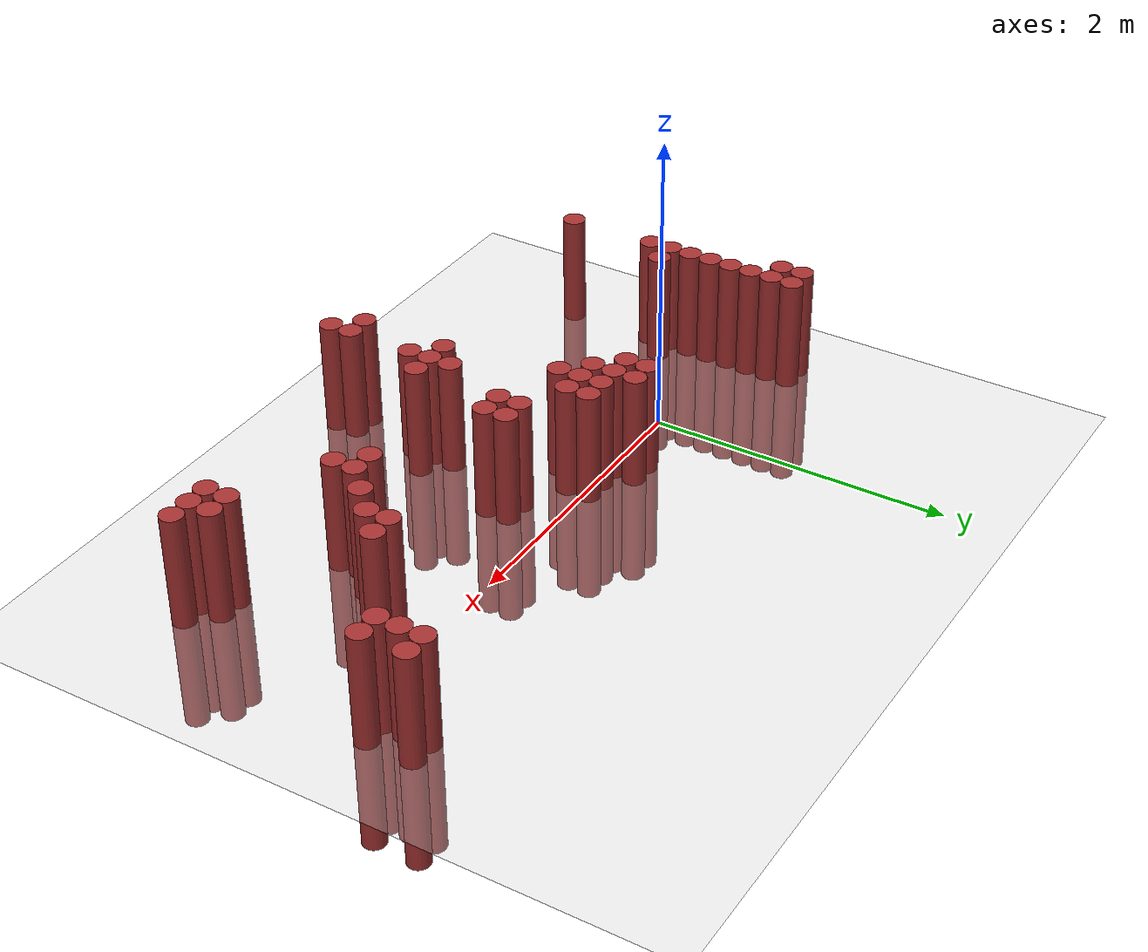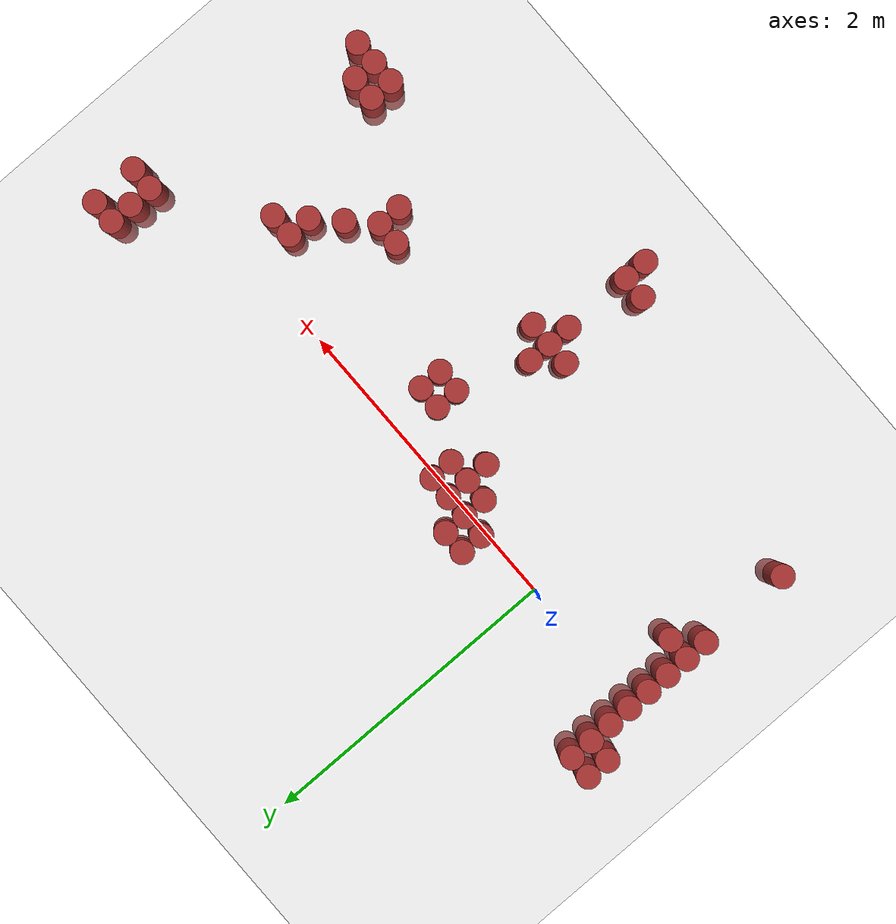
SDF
<sdf version="1.6">
 <world name="default">
  <model name="ground_plane">
   <static>1</static>
   <link name="link">
    <collision name="collision">
     <geometry><plane><normal>0 0 1</normal><size>100 100</size></plane></geometry>
     <surface><friction><ode><mu>100</mu><mu2>50</mu2></ode></friction></surface>
    </collision>
    <visual name="visual">
     <cast_shadows>0</cast_shadows>
     <geometry><plane><normal>0 0 1</normal><size>100 100</size></plane></geometry>
     <material>
      <script><uri>file://media/materials/scripts/gazebo.material</uri><name>Gazebo/Grey</name></script>
     </material>
    </visual>
   </link>
  </model>
  <model name="unit_cylinder_336">
   <static>1</static>
   <pose>-1.025000 0.325000 0.000000 0.000000 0.000000 0.000000</pose>
   <link name="link">
    <inertial>
     <mass>1</mass>
     <inertia><ixx>0.145833</ixx><ixy>0</ixy><ixz>0</ixz><iyy>0.145833</iyy><iyz>0</iyz><izz>0.125</izz></inertia>
    </inertial>
    <collision name="collision">
     <geometry><cylinder><radius>0.075000</radius><length>1.5</length></cylinder></geometry>
    </collision>
    <visual name="visual">
     <geometry><cylinder><radius>0.075000</radius><length>1.5</length></cylinder></geometry>
     <material>
      <ambient>0.648000 0.192000 0.192000 1</ambient>
      <diffuse>0.648000 0.192000 0.192000 1</diffuse>
     </material>
     <material>
      <script><name>Gazebo/Grey</name><uri>file://media/materials/scripts/gazebo.material</uri></script>
     </material>
    </visual>
   </link>
  </model>
  <model name="unit_cylinder_337">
   <static>1</static>
   <pose>-1.025000 0.475000 0.000000 0.000000 0.000000 0.000000</pose>
   <link name="link">
    <inertial>
     <mass>1</mass>
     <inertia><ixx>0.145833</ixx><ixy>0</ixy><ixz>0</ixz><iyy>0.145833</iyy><iyz>0</iyz><izz>0.125</izz></inertia>
    </inertial>
    <collision name="collision">
     <geometry><cylinder><radius>0.075000</radius><length>1.5</length></cylinder></geometry>
    </collision>
    <visual name="visual">
     <geometry><cylinder><radius>0.075000</radius><length>1.5</length></cylinder></geometry>
     <material>
      <ambient>0.648000 0.192000 0.192000 1</ambient>
      <diffuse>0.648000 0.192000 0.192000 1</diffuse>
     </material>
     <material>
      <script><name>Gazebo/Grey</name><uri>file://media/materials/scripts/gazebo.material</uri></script>
     </material>
    </visual>
   </link>
  </model>
  <model name="unit_cylinder_342">
   <static>1</static>
   <pose>-0.875000 -1.175000 0.000000 0.000000 0.000000 0.000000</pose>
   <link name="link">
    <inertial>
     <mass>1</mass>
     <inertia><ixx>0.145833</ixx><ixy>0</ixy><ixz>0</ixz><iyy>0.145833</iyy><iyz>0</iyz><izz>0.125</izz></inertia>
    </inertial>
    <collision name="collision">
     <geometry><cylinder><radius>0.075000</radius><length>1.5</length></cylinder></geometry>
    </collision>
    <visual name="visual">
     <geometry><cylinder><radius>0.075000</radius><length>1.5</length></cylinder></geometry>
     <material>
      <ambient>0.648000 0.192000 0.192000 1</ambient>
      <diffuse>0.648000 0.192000 0.192000 1</diffuse>
     </material>
     <material>
      <script><name>Gazebo/Grey</name><uri>file://media/materials/scripts/gazebo.material</uri></script>
     </material>
    </visual>
   </link>
  </model>
  <model name="unit_cylinder_343">
   <static>1</static>
   <pose>-0.875000 -0.575000 0.000000 0.000000 0.000000 0.000000</pose>
   <link name="link">
    <inertial>
     <mass>1</mass>
     <inertia><ixx>0.145833</ixx><ixy>0</ixy><ixz>0</ixz><iyy>0.145833</iyy><iyz>0</iyz><izz>0.125</izz></inertia>
    </inertial>
    <collision name="collision">
     <geometry><cylinder><radius>0.075000</radius><length>1.5</length></cylinder></geometry>
    </collision>
    <visual name="visual">
     <geometry><cylinder><radius>0.075000</radius><length>1.5</length></cylinder></geometry>
     <material>
      <ambient>0.648000 0.192000 0.192000 1</ambient>
      <diffuse>0.648000 0.192000 0.192000 1</diffuse>
     </material>
     <material>
      <script><name>Gazebo/Grey</name><uri>file://media/materials/scripts/gazebo.material</uri></script>
     </material>
    </visual>
   </link>
  </model>
  <model name="unit_cylinder_344">
   <static>1</static>
   <pose>-0.875000 -0.425000 0.000000 0.000000 0.000000 0.000000</pose>
   <link name="link">
    <inertial>
     <mass>1</mass>
     <inertia><ixx>0.145833</ixx><ixy>0</ixy><ixz>0</ixz><iyy>0.145833</iyy><iyz>0</iyz><izz>0.125</izz></inertia>
    </inertial>
    <collision name="collision">
     <geometry><cylinder><radius>0.075000</radius><length>1.5</length></cylinder></geometry>
    </collision>
    <visual name="visual">
     <geometry><cylinder><radius>0.075000</radius><length>1.5</length></cylinder></geometry>
     <material>
      <ambient>0.648000 0.192000 0.192000 1</ambient>
      <diffuse>0.648000 0.192000 0.192000 1</diffuse>
     </material>
     <material>
      <script><name>Gazebo/Grey</name><uri>file://media/materials/scripts/gazebo.material</uri></script>
     </material>
    </visual>
   </link>
  </model>
  <model name="unit_cylinder_345">
   <static>1</static>
   <pose>-0.875000 -0.275000 0.000000 0.000000 0.000000 0.000000</pose>
   <link name="link">
    <inertial>
     <mass>1</mass>
     <inertia><ixx>0.145833</ixx><ixy>0</ixy><ixz>0</ixz><iyy>0.145833</iyy><iyz>0</iyz><izz>0.125</izz></inertia>
    </inertial>
    <collision name="collision">
     <geometry><cylinder><radius>0.075000</radius><length>1.5</length></cylinder></geometry>
    </collision>
    <visual name="visual">
     <geometry><cylinder><radius>0.075000</radius><length>1.5</length></cylinder></geometry>
     <material>
      <ambient>0.648000 0.192000 0.192000 1</ambient>
      <diffuse>0.648000 0.192000 0.192000 1</diffuse>
     </material>
     <material>
      <script><name>Gazebo/Grey</name><uri>file://media/materials/scripts/gazebo.material</uri></script>
     </material>
    </visual>
   </link>
  </model>
  <model name="unit_cylinder_346">
   <static>1</static>
   <pose>-0.875000 -0.125000 0.000000 0.000000 0.000000 0.000000</pose>
   <link name="link">
    <inertial>
     <mass>1</mass>
     <inertia><ixx>0.145833</ixx><ixy>0</ixy><ixz>0</ixz><iyy>0.145833</iyy><iyz>0</iyz><izz>0.125</izz></inertia>
    </inertial>
    <collision name="collision">
     <geometry><cylinder><radius>0.075000</radius><length>1.5</length></cylinder></geometry>
    </collision>
    <visual name="visual">
     <geometry><cylinder><radius>0.075000</radius><length>1.5</length></cylinder></geometry>
     <material>
      <ambient>0.648000 0.192000 0.192000 1</ambient>
      <diffuse>0.648000 0.192000 0.192000 1</diffuse>
     </material>
     <material>
      <script><name>Gazebo/Grey</name><uri>file://media/materials/scripts/gazebo.material</uri></script>
     </material>
    </visual>
   </link>
  </model>
  <model name="unit_cylinder_347">
   <static>1</static>
   <pose>-0.875000 0.025000 0.000000 0.000000 0.000000 0.000000</pose>
   <link name="link">
    <inertial>
     <mass>1</mass>
     <inertia><ixx>0.145833</ixx><ixy>0</ixy><ixz>0</ixz><iyy>0.145833</iyy><iyz>0</iyz><izz>0.125</izz></inertia>
    </inertial>
    <collision name="collision">
     <geometry><cylinder><radius>0.075000</radius><length>1.5</length></cylinder></geometry>
    </collision>
    <visual name="visual">
     <geometry><cylinder><radius>0.075000</radius><length>1.5</length></cylinder></geometry>
     <material>
      <ambient>0.648000 0.192000 0.192000 1</ambient>
      <diffuse>0.648000 0.192000 0.192000 1</diffuse>
     </material>
     <material>
      <script><name>Gazebo/Grey</name><uri>file://media/materials/scripts/gazebo.material</uri></script>
     </material>
    </visual>
   </link>
  </model>
  <model name="unit_cylinder_348">
   <static>1</static>
   <pose>-0.875000 0.175000 0.000000 0.000000 0.000000 0.000000</pose>
   <link name="link">
    <inertial>
     <mass>1</mass>
     <inertia><ixx>0.145833</ixx><ixy>0</ixy><ixz>0</ixz><iyy>0.145833</iyy><iyz>0</iyz><izz>0.125</izz></inertia>
    </inertial>
    <collision name="collision">
     <geometry><cylinder><radius>0.075000</radius><length>1.5</length></cylinder></geometry>
    </collision>
    <visual name="visual">
     <geometry><cylinder><radius>0.075000</radius><length>1.5</length></cylinder></geometry>
     <material>
      <ambient>0.648000 0.192000 0.192000 1</ambient>
      <diffuse>0.648000 0.192000 0.192000 1</diffuse>
     </material>
     <material>
      <script><name>Gazebo/Grey</name><uri>file://media/materials/scripts/gazebo.material</uri></script>
     </material>
    </visual>
   </link>
  </model>
  <model name="unit_cylinder_349">
   <static>1</static>
   <pose>-0.875000 0.325000 0.000000 0.000000 0.000000 0.000000</pose>
   <link name="link">
    <inertial>
     <mass>1</mass>
     <inertia><ixx>0.145833</ixx><ixy>0</ixy><ixz>0</ixz><iyy>0.145833</iyy><iyz>0</iyz><izz>0.125</izz></inertia>
    </inertial>
    <collision name="collision">
     <geometry><cylinder><radius>0.075000</radius><length>1.5</length></cylinder></geometry>
    </collision>
    <visual name="visual">
     <geometry><cylinder><radius>0.075000</radius><length>1.5</length></cylinder></geometry>
     <material>
      <ambient>0.648000 0.192000 0.192000 1</ambient>
      <diffuse>0.648000 0.192000 0.192000 1</diffuse>
     </material>
     <material>
      <script><name>Gazebo/Grey</name><uri>file://media/materials/scripts/gazebo.material</uri></script>
     </material>
    </visual>
   </link>
  </model>
  <model name="unit_cylinder_350">
   <static>1</static>
   <pose>-0.875000 0.475000 0.000000 0.000000 0.000000 0.000000</pose>
   <link name="link">
    <inertial>
     <mass>1</mass>
     <inertia><ixx>0.145833</ixx><ixy>0</ixy><ixz>0</ixz><iyy>0.145833</iyy><iyz>0</iyz><izz>0.125</izz></inertia>
    </inertial>
    <collision name="collision">
     <geometry><cylinder><radius>0.075000</radius><length>1.5</length></cylinder></geometry>
    </collision>
    <visual name="visual">
     <geometry><cylinder><radius>0.075000</radius><length>1.5</length></cylinder></geometry>
     <material>
      <ambient>0.648000 0.192000 0.192000 1</ambient>
      <diffuse>0.648000 0.192000 0.192000 1</diffuse>
     </material>
     <material>
      <script><name>Gazebo/Grey</name><uri>file://media/materials/scripts/gazebo.material</uri></script>
     </material>
    </visual>
   </link>
  </model>
  <model name="unit_cylinder_353">
   <static>1</static>
   <pose>-0.725000 -0.425000 0.000000 0.000000 0.000000 0.000000</pose>
   <link name="link">
    <inertial>
     <mass>1</mass>
     <inertia><ixx>0.145833</ixx><ixy>0</ixy><ixz>0</ixz><iyy>0.145833</iyy><iyz>0</iyz><izz>0.125</izz></inertia>
    </inertial>
    <collision name="collision">
     <geometry><cylinder><radius>0.075000</radius><length>1.5</length></cylinder></geometry>
    </collision>
    <visual name="visual">
     <geometry><cylinder><radius>0.075000</radius><length>1.5</length></cylinder></geometry>
     <material>
      <ambient>0.648000 0.192000 0.192000 1</ambient>
      <diffuse>0.648000 0.192000 0.192000 1</diffuse>
     </material>
     <material>
      <script><name>Gazebo/Grey</name><uri>file://media/materials/scripts/gazebo.material</uri></script>
     </material>
    </visual>
   </link>
  </model>
  <model name="unit_cylinder_371">
   <static>1</static>
   <pose>0.475000 0.025000 0.000000 0.000000 0.000000 0.000000</pose>
   <link name="link">
    <inertial>
     <mass>1</mass>
     <inertia><ixx>0.145833</ixx><ixy>0</ixy><ixz>0</ixz><iyy>0.145833</iyy><iyz>0</iyz><izz>0.125</izz></inertia>
    </inertial>
    <collision name="collision">
     <geometry><cylinder><radius>0.075000</radius><length>1.5</length></cylinder></geometry>
    </collision>
    <visual name="visual">
     <geometry><cylinder><radius>0.075000</radius><length>1.5</length></cylinder></geometry>
     <material>
      <ambient>0.648000 0.192000 0.192000 1</ambient>
      <diffuse>0.648000 0.192000 0.192000 1</diffuse>
     </material>
     <material>
      <script><name>Gazebo/Grey</name><uri>file://media/materials/scripts/gazebo.material</uri></script>
     </material>
    </visual>
   </link>
  </model>
  <model name="unit_cylinder_372">
   <static>1</static>
   <pose>0.475000 0.175000 0.000000 0.000000 0.000000 0.000000</pose>
   <link name="link">
    <inertial>
     <mass>1</mass>
     <inertia><ixx>0.145833</ixx><ixy>0</ixy><ixz>0</ixz><iyy>0.145833</iyy><iyz>0</iyz><izz>0.125</izz></inertia>
    </inertial>
    <collision name="collision">
     <geometry><cylinder><radius>0.075000</radius><length>1.5</length></cylinder></geometry>
    </collision>
    <visual name="visual">
     <geometry><cylinder><radius>0.075000</radius><length>1.5</length></cylinder></geometry>
     <material>
      <ambient>0.648000 0.192000 0.192000 1</ambient>
      <diffuse>0.648000 0.192000 0.192000 1</diffuse>
     </material>
     <material>
      <script><name>Gazebo/Grey</name><uri>file://media/materials/scripts/gazebo.material</uri></script>
     </material>
    </visual>
   </link>
  </model>
  <model name="unit_cylinder_380">
   <static>1</static>
   <pose>0.625000 -0.125000 0.000000 0.000000 0.000000 0.000000</pose>
   <link name="link">
    <inertial>
     <mass>1</mass>
     <inertia><ixx>0.145833</ixx><ixy>0</ixy><ixz>0</ixz><iyy>0.145833</iyy><iyz>0</iyz><izz>0.125</izz></inertia>
    </inertial>
    <collision name="collision">
     <geometry><cylinder><radius>0.075000</radius><length>1.5</length></cylinder></geometry>
    </collision>
    <visual name="visual">
     <geometry><cylinder><radius>0.075000</radius><length>1.5</length></cylinder></geometry>
     <material>
      <ambient>0.648000 0.192000 0.192000 1</ambient>
      <diffuse>0.648000 0.192000 0.192000 1</diffuse>
     </material>
     <material>
      <script><name>Gazebo/Grey</name><uri>file://media/materials/scripts/gazebo.material</uri></script>
     </material>
    </visual>
   </link>
  </model>
  <model name="unit_cylinder_381">
   <static>1</static>
   <pose>0.625000 0.025000 0.000000 0.000000 0.000000 0.000000</pose>
   <link name="link">
    <inertial>
     <mass>1</mass>
     <inertia><ixx>0.145833</ixx><ixy>0</ixy><ixz>0</ixz><iyy>0.145833</iyy><iyz>0</iyz><izz>0.125</izz></inertia>
    </inertial>
    <collision name="collision">
     <geometry><cylinder><radius>0.075000</radius><length>1.5</length></cylinder></geometry>
    </collision>
    <visual name="visual">
     <geometry><cylinder><radius>0.075000</radius><length>1.5</length></cylinder></geometry>
     <material>
      <ambient>0.648000 0.192000 0.192000 1</ambient>
      <diffuse>0.648000 0.192000 0.192000 1</diffuse>
     </material>
     <material>
      <script><name>Gazebo/Grey</name><uri>file://media/materials/scripts/gazebo.material</uri></script>
     </material>
    </visual>
   </link>
  </model>
  <model name="unit_cylinder_382">
   <static>1</static>
   <pose>0.625000 0.175000 0.000000 0.000000 0.000000 0.000000</pose>
   <link name="link">
    <inertial>
     <mass>1</mass>
     <inertia><ixx>0.145833</ixx><ixy>0</ixy><ixz>0</ixz><iyy>0.145833</iyy><iyz>0</iyz><izz>0.125</izz></inertia>
    </inertial>
    <collision name="collision">
     <geometry><cylinder><radius>0.075000</radius><length>1.5</length></cylinder></geometry>
    </collision>
    <visual name="visual">
     <geometry><cylinder><radius>0.075000</radius><length>1.5</length></cylinder></geometry>
     <material>
      <ambient>0.648000 0.192000 0.192000 1</ambient>
      <diffuse>0.648000 0.192000 0.192000 1</diffuse>
     </material>
     <material>
      <script><name>Gazebo/Grey</name><uri>file://media/materials/scripts/gazebo.material</uri></script>
     </material>
    </visual>
   </link>
  </model>
  <model name="unit_cylinder_387">
   <static>1</static>
   <pose>0.775000 -0.275000 0.000000 0.000000 0.000000 0.000000</pose>
   <link name="link">
    <inertial>
     <mass>1</mass>
     <inertia><ixx>0.145833</ixx><ixy>0</ixy><ixz>0</ixz><iyy>0.145833</iyy><iyz>0</iyz><izz>0.125</izz></inertia>
    </inertial>
    <collision name="collision">
     <geometry><cylinder><radius>0.075000</radius><length>1.5</length></cylinder></geometry>
    </collision>
    <visual name="visual">
     <geometry><cylinder><radius>0.075000</radius><length>1.5</length></cylinder></geometry>
     <material>
      <ambient>0.648000 0.192000 0.192000 1</ambient>
      <diffuse>0.648000 0.192000 0.192000 1</diffuse>
     </material>
     <material>
      <script><name>Gazebo/Grey</name><uri>file://media/materials/scripts/gazebo.material</uri></script>
     </material>
    </visual>
   </link>
  </model>
  <model name="unit_cylinder_388">
   <static>1</static>
   <pose>0.775000 -0.125000 0.000000 0.000000 0.000000 0.000000</pose>
   <link name="link">
    <inertial>
     <mass>1</mass>
     <inertia><ixx>0.145833</ixx><ixy>0</ixy><ixz>0</ixz><iyy>0.145833</iyy><iyz>0</iyz><izz>0.125</izz></inertia>
    </inertial>
    <collision name="collision">
     <geometry><cylinder><radius>0.075000</radius><length>1.5</length></cylinder></geometry>
    </collision>
    <visual name="visual">
     <geometry><cylinder><radius>0.075000</radius><length>1.5</length></cylinder></geometry>
     <material>
      <ambient>0.648000 0.192000 0.192000 1</ambient>
      <diffuse>0.648000 0.192000 0.192000 1</diffuse>
     </material>
     <material>
      <script><name>Gazebo/Grey</name><uri>file://media/materials/scripts/gazebo.material</uri></script>
     </material>
    </visual>
   </link>
  </model>
  <model name="unit_cylinder_389">
   <static>1</static>
   <pose>0.775000 0.025000 0.000000 0.000000 0.000000 0.000000</pose>
   <link name="link">
    <inertial>
     <mass>1</mass>
     <inertia><ixx>0.145833</ixx><ixy>0</ixy><ixz>0</ixz><iyy>0.145833</iyy><iyz>0</iyz><izz>0.125</izz></inertia>
    </inertial>
    <collision name="collision">
     <geometry><cylinder><radius>0.075000</radius><length>1.5</length></cylinder></geometry>
    </collision>
    <visual name="visual">
     <geometry><cylinder><radius>0.075000</radius><length>1.5</length></cylinder></geometry>
     <material>
      <ambient>0.648000 0.192000 0.192000 1</ambient>
      <diffuse>0.648000 0.192000 0.192000 1</diffuse>
     </material>
     <material>
      <script><name>Gazebo/Grey</name><uri>file://media/materials/scripts/gazebo.material</uri></script>
     </material>
    </visual>
   </link>
  </model>
  <model name="unit_cylinder_393">
   <static>1</static>
   <pose>0.925000 -1.625000 0.000000 0.000000 0.000000 0.000000</pose>
   <link name="link">
    <inertial>
     <mass>1</mass>
     <inertia><ixx>0.145833</ixx><ixy>0</ixy><ixz>0</ixz><iyy>0.145833</iyy><iyz>0</iyz><izz>0.125</izz></inertia>
    </inertial>
    <collision name="collision">
     <geometry><cylinder><radius>0.075000</radius><length>1.5</length></cylinder></geometry>
    </collision>
    <visual name="visual">
     <geometry><cylinder><radius>0.075000</radius><length>1.5</length></cylinder></geometry>
     <material>
      <ambient>0.648000 0.192000 0.192000 1</ambient>
      <diffuse>0.648000 0.192000 0.192000 1</diffuse>
     </material>
     <material>
      <script><name>Gazebo/Grey</name><uri>file://media/materials/scripts/gazebo.material</uri></script>
     </material>
    </visual>
   </link>
  </model>
  <model name="unit_cylinder_394">
   <static>1</static>
   <pose>0.925000 -1.025000 0.000000 0.000000 0.000000 0.000000</pose>
   <link name="link">
    <inertial>
     <mass>1</mass>
     <inertia><ixx>0.145833</ixx><ixy>0</ixy><ixz>0</ixz><iyy>0.145833</iyy><iyz>0</iyz><izz>0.125</izz></inertia>
    </inertial>
    <collision name="collision">
     <geometry><cylinder><radius>0.075000</radius><length>1.5</length></cylinder></geometry>
    </collision>
    <visual name="visual">
     <geometry><cylinder><radius>0.075000</radius><length>1.5</length></cylinder></geometry>
     <material>
      <ambient>0.648000 0.192000 0.192000 1</ambient>
      <diffuse>0.648000 0.192000 0.192000 1</diffuse>
     </material>
     <material>
      <script><name>Gazebo/Grey</name><uri>file://media/materials/scripts/gazebo.material</uri></script>
     </material>
    </visual>
   </link>
  </model>
  <model name="unit_cylinder_395">
   <static>1</static>
   <pose>0.925000 -0.125000 0.000000 0.000000 0.000000 0.000000</pose>
   <link name="link">
    <inertial>
     <mass>1</mass>
     <inertia><ixx>0.145833</ixx><ixy>0</ixy><ixz>0</ixz><iyy>0.145833</iyy><iyz>0</iyz><izz>0.125</izz></inertia>
    </inertial>
    <collision name="collision">
     <geometry><cylinder><radius>0.075000</radius><length>1.5</length></cylinder></geometry>
    </collision>
    <visual name="visual">
     <geometry><cylinder><radius>0.075000</radius><length>1.5</length></cylinder></geometry>
     <material>
      <ambient>0.648000 0.192000 0.192000 1</ambient>
      <diffuse>0.648000 0.192000 0.192000 1</diffuse>
     </material>
     <material>
      <script><name>Gazebo/Grey</name><uri>file://media/materials/scripts/gazebo.material</uri></script>
     </material>
    </visual>
   </link>
  </model>
  <model name="unit_cylinder_396">
   <static>1</static>
   <pose>0.925000 0.025000 0.000000 0.000000 0.000000 0.000000</pose>
   <link name="link">
    <inertial>
     <mass>1</mass>
     <inertia><ixx>0.145833</ixx><ixy>0</ixy><ixz>0</ixz><iyy>0.145833</iyy><iyz>0</iyz><izz>0.125</izz></inertia>
    </inertial>
    <collision name="collision">
     <geometry><cylinder><radius>0.075000</radius><length>1.5</length></cylinder></geometry>
    </collision>
    <visual name="visual">
     <geometry><cylinder><radius>0.075000</radius><length>1.5</length></cylinder></geometry>
     <material>
      <ambient>0.648000 0.192000 0.192000 1</ambient>
      <diffuse>0.648000 0.192000 0.192000 1</diffuse>
     </material>
     <material>
      <script><name>Gazebo/Grey</name><uri>file://media/materials/scripts/gazebo.material</uri></script>
     </material>
    </visual>
   </link>
  </model>
  <model name="unit_cylinder_403">
   <static>1</static>
   <pose>1.075000 -1.775000 0.000000 0.000000 0.000000 0.000000</pose>
   <link name="link">
    <inertial>
     <mass>1</mass>
     <inertia><ixx>0.145833</ixx><ixy>0</ixy><ixz>0</ixz><iyy>0.145833</iyy><iyz>0</iyz><izz>0.125</izz></inertia>
    </inertial>
    <collision name="collision">
     <geometry><cylinder><radius>0.075000</radius><length>1.5</length></cylinder></geometry>
    </collision>
    <visual name="visual">
     <geometry><cylinder><radius>0.075000</radius><length>1.5</length></cylinder></geometry>
     <material>
      <ambient>0.648000 0.192000 0.192000 1</ambient>
      <diffuse>0.648000 0.192000 0.192000 1</diffuse>
     </material>
     <material>
      <script><name>Gazebo/Grey</name><uri>file://media/materials/scripts/gazebo.material</uri></script>
     </material>
    </visual>
   </link>
  </model>
  <model name="unit_cylinder_404">
   <static>1</static>
   <pose>1.075000 -1.625000 0.000000 0.000000 0.000000 0.000000</pose>
   <link name="link">
    <inertial>
     <mass>1</mass>
     <inertia><ixx>0.145833</ixx><ixy>0</ixy><ixz>0</ixz><iyy>0.145833</iyy><iyz>0</iyz><izz>0.125</izz></inertia>
    </inertial>
    <collision name="collision">
     <geometry><cylinder><radius>0.075000</radius><length>1.5</length></cylinder></geometry>
    </collision>
    <visual name="visual">
     <geometry><cylinder><radius>0.075000</radius><length>1.5</length></cylinder></geometry>
     <material>
      <ambient>0.648000 0.192000 0.192000 1</ambient>
      <diffuse>0.648000 0.192000 0.192000 1</diffuse>
     </material>
     <material>
      <script><name>Gazebo/Grey</name><uri>file://media/materials/scripts/gazebo.material</uri></script>
     </material>
    </visual>
   </link>
  </model>
  <model name="unit_cylinder_405">
   <static>1</static>
   <pose>1.075000 -1.175000 0.000000 0.000000 0.000000 0.000000</pose>
   <link name="link">
    <inertial>
     <mass>1</mass>
     <inertia><ixx>0.145833</ixx><ixy>0</ixy><ixz>0</ixz><iyy>0.145833</iyy><iyz>0</iyz><izz>0.125</izz></inertia>
    </inertial>
    <collision name="collision">
     <geometry><cylinder><radius>0.075000</radius><length>1.5</length></cylinder></geometry>
    </collision>
    <visual name="visual">
     <geometry><cylinder><radius>0.075000</radius><length>1.5</length></cylinder></geometry>
     <material>
      <ambient>0.648000 0.192000 0.192000 1</ambient>
      <diffuse>0.648000 0.192000 0.192000 1</diffuse>
     </material>
     <material>
      <script><name>Gazebo/Grey</name><uri>file://media/materials/scripts/gazebo.material</uri></script>
     </material>
    </visual>
   </link>
  </model>
  <model name="unit_cylinder_406">
   <static>1</static>
   <pose>1.075000 -1.025000 0.000000 0.000000 0.000000 0.000000</pose>
   <link name="link">
    <inertial>
     <mass>1</mass>
     <inertia><ixx>0.145833</ixx><ixy>0</ixy><ixz>0</ixz><iyy>0.145833</iyy><iyz>0</iyz><izz>0.125</izz></inertia>
    </inertial>
    <collision name="collision">
     <geometry><cylinder><radius>0.075000</radius><length>1.5</length></cylinder></geometry>
    </collision>
    <visual name="visual">
     <geometry><cylinder><radius>0.075000</radius><length>1.5</length></cylinder></geometry>
     <material>
      <ambient>0.648000 0.192000 0.192000 1</ambient>
      <diffuse>0.648000 0.192000 0.192000 1</diffuse>
     </material>
     <material>
      <script><name>Gazebo/Grey</name><uri>file://media/materials/scripts/gazebo.material</uri></script>
     </material>
    </visual>
   </link>
  </model>
  <model name="unit_cylinder_407">
   <static>1</static>
   <pose>1.075000 -0.875000 0.000000 0.000000 0.000000 0.000000</pose>
   <link name="link">
    <inertial>
     <mass>1</mass>
     <inertia><ixx>0.145833</ixx><ixy>0</ixy><ixz>0</ixz><iyy>0.145833</iyy><iyz>0</iyz><izz>0.125</izz></inertia>
    </inertial>
    <collision name="collision">
     <geometry><cylinder><radius>0.075000</radius><length>1.5</length></cylinder></geometry>
    </collision>
    <visual name="visual">
     <geometry><cylinder><radius>0.075000</radius><length>1.5</length></cylinder></geometry>
     <material>
      <ambient>0.648000 0.192000 0.192000 1</ambient>
      <diffuse>0.648000 0.192000 0.192000 1</diffuse>
     </material>
     <material>
      <script><name>Gazebo/Grey</name><uri>file://media/materials/scripts/gazebo.material</uri></script>
     </material>
    </visual>
   </link>
  </model>
  <model name="unit_cylinder_416">
   <static>1</static>
   <pose>1.225000 -1.025000 0.000000 0.000000 0.000000 0.000000</pose>
   <link name="link">
    <inertial>
     <mass>1</mass>
     <inertia><ixx>0.145833</ixx><ixy>0</ixy><ixz>0</ixz><iyy>0.145833</iyy><iyz>0</iyz><izz>0.125</izz></inertia>
    </inertial>
    <collision name="collision">
     <geometry><cylinder><radius>0.075000</radius><length>1.5</length></cylinder></geometry>
    </collision>
    <visual name="visual">
     <geometry><cylinder><radius>0.075000</radius><length>1.5</length></cylinder></geometry>
     <material>
      <ambient>0.648000 0.192000 0.192000 1</ambient>
      <diffuse>0.648000 0.192000 0.192000 1</diffuse>
     </material>
     <material>
      <script><name>Gazebo/Grey</name><uri>file://media/materials/scripts/gazebo.material</uri></script>
     </material>
    </visual>
   </link>
  </model>
  <model name="unit_cylinder_417">
   <static>1</static>
   <pose>1.225000 -0.425000 0.000000 0.000000 0.000000 0.000000</pose>
   <link name="link">
    <inertial>
     <mass>1</mass>
     <inertia><ixx>0.145833</ixx><ixy>0</ixy><ixz>0</ixz><iyy>0.145833</iyy><iyz>0</iyz><izz>0.125</izz></inertia>
    </inertial>
    <collision name="collision">
     <geometry><cylinder><radius>0.075000</radius><length>1.5</length></cylinder></geometry>
    </collision>
    <visual name="visual">
     <geometry><cylinder><radius>0.075000</radius><length>1.5</length></cylinder></geometry>
     <material>
      <ambient>0.648000 0.192000 0.192000 1</ambient>
      <diffuse>0.648000 0.192000 0.192000 1</diffuse>
     </material>
     <material>
      <script><name>Gazebo/Grey</name><uri>file://media/materials/scripts/gazebo.material</uri></script>
     </material>
    </visual>
   </link>
  </model>
  <model name="unit_cylinder_418">
   <static>1</static>
   <pose>1.225000 -0.275000 0.000000 0.000000 0.000000 0.000000</pose>
   <link name="link">
    <inertial>
     <mass>1</mass>
     <inertia><ixx>0.145833</ixx><ixy>0</ixy><ixz>0</ixz><iyy>0.145833</iyy><iyz>0</iyz><izz>0.125</izz></inertia>
    </inertial>
    <collision name="collision">
     <geometry><cylinder><radius>0.075000</radius><length>1.5</length></cylinder></geometry>
    </collision>
    <visual name="visual">
     <geometry><cylinder><radius>0.075000</radius><length>1.5</length></cylinder></geometry>
     <material>
      <ambient>0.648000 0.192000 0.192000 1</ambient>
      <diffuse>0.648000 0.192000 0.192000 1</diffuse>
     </material>
     <material>
      <script><name>Gazebo/Grey</name><uri>file://media/materials/scripts/gazebo.material</uri></script>
     </material>
    </visual>
   </link>
  </model>
  <model name="unit_cylinder_428">
   <static>1</static>
   <pose>1.375000 -0.425000 0.000000 0.000000 0.000000 0.000000</pose>
   <link name="link">
    <inertial>
     <mass>1</mass>
     <inertia><ixx>0.145833</ixx><ixy>0</ixy><ixz>0</ixz><iyy>0.145833</iyy><iyz>0</iyz><izz>0.125</izz></inertia>
    </inertial>
    <collision name="collision">
     <geometry><cylinder><radius>0.075000</radius><length>1.5</length></cylinder></geometry>
    </collision>
    <visual name="visual">
     <geometry><cylinder><radius>0.075000</radius><length>1.5</length></cylinder></geometry>
     <material>
      <ambient>0.648000 0.192000 0.192000 1</ambient>
      <diffuse>0.648000 0.192000 0.192000 1</diffuse>
     </material>
     <material>
      <script><name>Gazebo/Grey</name><uri>file://media/materials/scripts/gazebo.material</uri></script>
     </material>
    </visual>
   </link>
  </model>
  <model name="unit_cylinder_429">
   <static>1</static>
   <pose>1.375000 -0.275000 0.000000 0.000000 0.000000 0.000000</pose>
   <link name="link">
    <inertial>
     <mass>1</mass>
     <inertia><ixx>0.145833</ixx><ixy>0</ixy><ixz>0</ixz><iyy>0.145833</iyy><iyz>0</iyz><izz>0.125</izz></inertia>
    </inertial>
    <collision name="collision">
     <geometry><cylinder><radius>0.075000</radius><length>1.5</length></cylinder></geometry>
    </collision>
    <visual name="visual">
     <geometry><cylinder><radius>0.075000</radius><length>1.5</length></cylinder></geometry>
     <material>
      <ambient>0.648000 0.192000 0.192000 1</ambient>
      <diffuse>0.648000 0.192000 0.192000 1</diffuse>
     </material>
     <material>
      <script><name>Gazebo/Grey</name><uri>file://media/materials/scripts/gazebo.material</uri></script>
     </material>
    </visual>
   </link>
  </model>
  <model name="unit_cylinder_440">
   <static>1</static>
   <pose>2.125000 -0.725000 0.000000 0.000000 0.000000 0.000000</pose>
   <link name="link">
    <inertial>
     <mass>1</mass>
     <inertia><ixx>0.145833</ixx><ixy>0</ixy><ixz>0</ixz><iyy>0.145833</iyy><iyz>0</iyz><izz>0.125</izz></inertia>
    </inertial>
    <collision name="collision">
     <geometry><cylinder><radius>0.075000</radius><length>1.5</length></cylinder></geometry>
    </collision>
    <visual name="visual">
     <geometry><cylinder><radius>0.075000</radius><length>1.5</length></cylinder></geometry>
     <material>
      <ambient>0.648000 0.192000 0.192000 1</ambient>
      <diffuse>0.648000 0.192000 0.192000 1</diffuse>
     </material>
     <material>
      <script><name>Gazebo/Grey</name><uri>file://media/materials/scripts/gazebo.material</uri></script>
     </material>
    </visual>
   </link>
  </model>
  <model name="unit_cylinder_443">
   <static>1</static>
   <pose>2.275000 -0.875000 0.000000 0.000000 0.000000 0.000000</pose>
   <link name="link">
    <inertial>
     <mass>1</mass>
     <inertia><ixx>0.145833</ixx><ixy>0</ixy><ixz>0</ixz><iyy>0.145833</iyy><iyz>0</iyz><izz>0.125</izz></inertia>
    </inertial>
    <collision name="collision">
     <geometry><cylinder><radius>0.075000</radius><length>1.5</length></cylinder></geometry>
    </collision>
    <visual name="visual">
     <geometry><cylinder><radius>0.075000</radius><length>1.5</length></cylinder></geometry>
     <material>
      <ambient>0.648000 0.192000 0.192000 1</ambient>
      <diffuse>0.648000 0.192000 0.192000 1</diffuse>
     </material>
     <material>
      <script><name>Gazebo/Grey</name><uri>file://media/materials/scripts/gazebo.material</uri></script>
     </material>
    </visual>
   </link>
  </model>
  <model name="unit_cylinder_444">
   <static>1</static>
   <pose>2.275000 -0.725000 0.000000 0.000000 0.000000 0.000000</pose>
   <link name="link">
    <inertial>
     <mass>1</mass>
     <inertia><ixx>0.145833</ixx><ixy>0</ixy><ixz>0</ixz><iyy>0.145833</iyy><iyz>0</iyz><izz>0.125</izz></inertia>
    </inertial>
    <collision name="collision">
     <geometry><cylinder><radius>0.075000</radius><length>1.5</length></cylinder></geometry>
    </collision>
    <visual name="visual">
     <geometry><cylinder><radius>0.075000</radius><length>1.5</length></cylinder></geometry>
     <material>
      <ambient>0.648000 0.192000 0.192000 1</ambient>
      <diffuse>0.648000 0.192000 0.192000 1</diffuse>
     </material>
     <material>
      <script><name>Gazebo/Grey</name><uri>file://media/materials/scripts/gazebo.material</uri></script>
     </material>
    </visual>
   </link>
  </model>
  <model name="unit_cylinder_447">
   <static>1</static>
   <pose>2.425000 -0.575000 0.000000 0.000000 0.000000 0.000000</pose>
   <link name="link">
    <inertial>
     <mass>1</mass>
     <inertia><ixx>0.145833</ixx><ixy>0</ixy><ixz>0</ixz><iyy>0.145833</iyy><iyz>0</iyz><izz>0.125</izz></inertia>
    </inertial>
    <collision name="collision">
     <geometry><cylinder><radius>0.075000</radius><length>1.5</length></cylinder></geometry>
    </collision>
    <visual name="visual">
     <geometry><cylinder><radius>0.075000</radius><length>1.5</length></cylinder></geometry>
     <material>
      <ambient>0.648000 0.192000 0.192000 1</ambient>
      <diffuse>0.648000 0.192000 0.192000 1</diffuse>
     </material>
     <material>
      <script><name>Gazebo/Grey</name><uri>file://media/materials/scripts/gazebo.material</uri></script>
     </material>
    </visual>
   </link>
  </model>
  <model name="unit_cylinder_449">
   <static>1</static>
   <pose>2.575000 -0.425000 0.000000 0.000000 0.000000 0.000000</pose>
   <link name="link">
    <inertial>
     <mass>1</mass>
     <inertia><ixx>0.145833</ixx><ixy>0</ixy><ixz>0</ixz><iyy>0.145833</iyy><iyz>0</iyz><izz>0.125</izz></inertia>
    </inertial>
    <collision name="collision">
     <geometry><cylinder><radius>0.075000</radius><length>1.5</length></cylinder></geometry>
    </collision>
    <visual name="visual">
     <geometry><cylinder><radius>0.075000</radius><length>1.5</length></cylinder></geometry>
     <material>
      <ambient>0.648000 0.192000 0.192000 1</ambient>
      <diffuse>0.648000 0.192000 0.192000 1</diffuse>
     </material>
     <material>
      <script><name>Gazebo/Grey</name><uri>file://media/materials/scripts/gazebo.material</uri></script>
     </material>
    </visual>
   </link>
  </model>
  <model name="unit_cylinder_450">
   <static>1</static>
   <pose>2.575000 -0.275000 0.000000 0.000000 0.000000 0.000000</pose>
   <link name="link">
    <inertial>
     <mass>1</mass>
     <inertia><ixx>0.145833</ixx><ixy>0</ixy><ixz>0</ixz><iyy>0.145833</iyy><iyz>0</iyz><izz>0.125</izz></inertia>
    </inertial>
    <collision name="collision">
     <geometry><cylinder><radius>0.075000</radius><length>1.5</length></cylinder></geometry>
    </collision>
    <visual name="visual">
     <geometry><cylinder><radius>0.075000</radius><length>1.5</length></cylinder></geometry>
     <material>
      <ambient>0.648000 0.192000 0.192000 1</ambient>
      <diffuse>0.648000 0.192000 0.192000 1</diffuse>
     </material>
     <material>
      <script><name>Gazebo/Grey</name><uri>file://media/materials/scripts/gazebo.material</uri></script>
     </material>
    </visual>
   </link>
  </model>
  <model name="unit_cylinder_457">
   <static>1</static>
   <pose>2.725000 -0.275000 0.000000 0.000000 0.000000 0.000000</pose>
   <link name="link">
    <inertial>
     <mass>1</mass>
     <inertia><ixx>0.145833</ixx><ixy>0</ixy><ixz>0</ixz><iyy>0.145833</iyy><iyz>0</iyz><izz>0.125</izz></inertia>
    </inertial>
    <collision name="collision">
     <geometry><cylinder><radius>0.075000</radius><length>1.5</length></cylinder></geometry>
    </collision>
    <visual name="visual">
     <geometry><cylinder><radius>0.075000</radius><length>1.5</length></cylinder></geometry>
     <material>
      <ambient>0.648000 0.192000 0.192000 1</ambient>
      <diffuse>0.648000 0.192000 0.192000 1</diffuse>
     </material>
     <material>
      <script><name>Gazebo/Grey</name><uri>file://media/materials/scripts/gazebo.material</uri></script>
     </material>
    </visual>
   </link>
  </model>
  <model name="unit_cylinder_462">
   <static>1</static>
   <pose>2.875000 -1.325000 0.000000 0.000000 0.000000 0.000000</pose>
   <link name="link">
    <inertial>
     <mass>1</mass>
     <inertia><ixx>0.145833</ixx><ixy>0</ixy><ixz>0</ixz><iyy>0.145833</iyy><iyz>0</iyz><izz>0.125</izz></inertia>
    </inertial>
    <collision name="collision">
     <geometry><cylinder><radius>0.075000</radius><length>1.5</length></cylinder></geometry>
    </collision>
    <visual name="visual">
     <geometry><cylinder><radius>0.075000</radius><length>1.5</length></cylinder></geometry>
     <material>
      <ambient>0.648000 0.192000 0.192000 1</ambient>
      <diffuse>0.648000 0.192000 0.192000 1</diffuse>
     </material>
     <material>
      <script><name>Gazebo/Grey</name><uri>file://media/materials/scripts/gazebo.material</uri></script>
     </material>
    </visual>
   </link>
  </model>
  <model name="unit_cylinder_463">
   <static>1</static>
   <pose>2.875000 -1.175000 0.000000 0.000000 0.000000 0.000000</pose>
   <link name="link">
    <inertial>
     <mass>1</mass>
     <inertia><ixx>0.145833</ixx><ixy>0</ixy><ixz>0</ixz><iyy>0.145833</iyy><iyz>0</iyz><izz>0.125</izz></inertia>
    </inertial>
    <collision name="collision">
     <geometry><cylinder><radius>0.075000</radius><length>1.5</length></cylinder></geometry>
    </collision>
    <visual name="visual">
     <geometry><cylinder><radius>0.075000</radius><length>1.5</length></cylinder></geometry>
     <material>
      <ambient>0.648000 0.192000 0.192000 1</ambient>
      <diffuse>0.648000 0.192000 0.192000 1</diffuse>
     </material>
     <material>
      <script><name>Gazebo/Grey</name><uri>file://media/materials/scripts/gazebo.material</uri></script>
     </material>
    </visual>
   </link>
  </model>
  <model name="unit_cylinder_467">
   <static>1</static>
   <pose>3.025000 -1.325000 0.000000 0.000000 0.000000 0.000000</pose>
   <link name="link">
    <inertial>
     <mass>1</mass>
     <inertia><ixx>0.145833</ixx><ixy>0</ixy><ixz>0</ixz><iyy>0.145833</iyy><iyz>0</iyz><izz>0.125</izz></inertia>
    </inertial>
    <collision name="collision">
     <geometry><cylinder><radius>0.075000</radius><length>1.5</length></cylinder></geometry>
    </collision>
    <visual name="visual">
     <geometry><cylinder><radius>0.075000</radius><length>1.5</length></cylinder></geometry>
     <material>
      <ambient>0.648000 0.192000 0.192000 1</ambient>
      <diffuse>0.648000 0.192000 0.192000 1</diffuse>
     </material>
     <material>
      <script><name>Gazebo/Grey</name><uri>file://media/materials/scripts/gazebo.material</uri></script>
     </material>
    </visual>
   </link>
  </model>
  <model name="unit_cylinder_468">
   <static>1</static>
   <pose>3.025000 -1.175000 0.000000 0.000000 0.000000 0.000000</pose>
   <link name="link">
    <inertial>
     <mass>1</mass>
     <inertia><ixx>0.145833</ixx><ixy>0</ixy><ixz>0</ixz><iyy>0.145833</iyy><iyz>0</iyz><izz>0.125</izz></inertia>
    </inertial>
    <collision name="collision">
     <geometry><cylinder><radius>0.075000</radius><length>1.5</length></cylinder></geometry>
    </collision>
    <visual name="visual">
     <geometry><cylinder><radius>0.075000</radius><length>1.5</length></cylinder></geometry>
     <material>
      <ambient>0.648000 0.192000 0.192000 1</ambient>
      <diffuse>0.648000 0.192000 0.192000 1</diffuse>
     </material>
     <material>
      <script><name>Gazebo/Grey</name><uri>file://media/materials/scripts/gazebo.material</uri></script>
     </material>
    </visual>
   </link>
  </model>
  <model name="unit_cylinder_470">
   <static>1</static>
   <pose>3.175000 -1.325000 0.000000 0.000000 0.000000 0.000000</pose>
   <link name="link">
    <inertial>
     <mass>1</mass>
     <inertia><ixx>0.145833</ixx><ixy>0</ixy><ixz>0</ixz><iyy>0.145833</iyy><iyz>0</iyz><izz>0.125</izz></inertia>
    </inertial>
    <collision name="collision">
     <geometry><cylinder><radius>0.075000</radius><length>1.5</length></cylinder></geometry>
    </collision>
    <visual name="visual">
     <geometry><cylinder><radius>0.075000</radius><length>1.5</length></cylinder></geometry>
     <material>
      <ambient>0.648000 0.192000 0.192000 1</ambient>
      <diffuse>0.648000 0.192000 0.192000 1</diffuse>
     </material>
     <material>
      <script><name>Gazebo/Grey</name><uri>file://media/materials/scripts/gazebo.material</uri></script>
     </material>
    </visual>
   </link>
  </model>
  <model name="unit_cylinder_473">
   <static>1</static>
   <pose>3.325000 0.175000 0.000000 0.000000 0.000000 0.000000</pose>
   <link name="link">
    <inertial>
     <mass>1</mass>
     <inertia><ixx>0.145833</ixx><ixy>0</ixy><ixz>0</ixz><iyy>0.145833</iyy><iyz>0</iyz><izz>0.125</izz></inertia>
    </inertial>
    <collision name="collision">
     <geometry><cylinder><radius>0.075000</radius><length>1.5</length></cylinder></geometry>
    </collision>
    <visual name="visual">
     <geometry><cylinder><radius>0.075000</radius><length>1.5</length></cylinder></geometry>
     <material>
      <ambient>0.648000 0.192000 0.192000 1</ambient>
      <diffuse>0.648000 0.192000 0.192000 1</diffuse>
     </material>
     <material>
      <script><name>Gazebo/Grey</name><uri>file://media/materials/scripts/gazebo.material</uri></script>
     </material>
    </visual>
   </link>
  </model>
  <model name="unit_cylinder_474">
   <static>1</static>
   <pose>3.325000 0.325000 0.000000 0.000000 0.000000 0.000000</pose>
   <link name="link">
    <inertial>
     <mass>1</mass>
     <inertia><ixx>0.145833</ixx><ixy>0</ixy><ixz>0</ixz><iyy>0.145833</iyy><iyz>0</iyz><izz>0.125</izz></inertia>
    </inertial>
    <collision name="collision">
     <geometry><cylinder><radius>0.075000</radius><length>1.5</length></cylinder></geometry>
    </collision>
    <visual name="visual">
     <geometry><cylinder><radius>0.075000</radius><length>1.5</length></cylinder></geometry>
     <material>
      <ambient>0.648000 0.192000 0.192000 1</ambient>
      <diffuse>0.648000 0.192000 0.192000 1</diffuse>
     </material>
     <material>
      <script><name>Gazebo/Grey</name><uri>file://media/materials/scripts/gazebo.material</uri></script>
     </material>
    </visual>
   </link>
  </model>
  <model name="unit_cylinder_475">
   <static>1</static>
   <pose>3.325000 0.475000 0.000000 0.000000 0.000000 0.000000</pose>
   <link name="link">
    <inertial>
     <mass>1</mass>
     <inertia><ixx>0.145833</ixx><ixy>0</ixy><ixz>0</ixz><iyy>0.145833</iyy><iyz>0</iyz><izz>0.125</izz></inertia>
    </inertial>
    <collision name="collision">
     <geometry><cylinder><radius>0.075000</radius><length>1.5</length></cylinder></geometry>
    </collision>
    <visual name="visual">
     <geometry><cylinder><radius>0.075000</radius><length>1.5</length></cylinder></geometry>
     <material>
      <ambient>0.648000 0.192000 0.192000 1</ambient>
      <diffuse>0.648000 0.192000 0.192000 1</diffuse>
     </material>
     <material>
      <script><name>Gazebo/Grey</name><uri>file://media/materials/scripts/gazebo.material</uri></script>
     </material>
    </visual>
   </link>
  </model>
  <model name="unit_cylinder_481">
   <static>1</static>
   <pose>3.475000 0.175000 0.000000 0.000000 0.000000 0.000000</pose>
   <link name="link">
    <inertial>
     <mass>1</mass>
     <inertia><ixx>0.145833</ixx><ixy>0</ixy><ixz>0</ixz><iyy>0.145833</iyy><iyz>0</iyz><izz>0.125</izz></inertia>
    </inertial>
    <collision name="collision">
     <geometry><cylinder><radius>0.075000</radius><length>1.5</length></cylinder></geometry>
    </collision>
    <visual name="visual">
     <geometry><cylinder><radius>0.075000</radius><length>1.5</length></cylinder></geometry>
     <material>
      <ambient>0.648000 0.192000 0.192000 1</ambient>
      <diffuse>0.648000 0.192000 0.192000 1</diffuse>
     </material>
     <material>
      <script><name>Gazebo/Grey</name><uri>file://media/materials/scripts/gazebo.material</uri></script>
     </material>
    </visual>
   </link>
  </model>
  <model name="unit_cylinder_482">
   <static>1</static>
   <pose>3.475000 0.475000 0.000000 0.000000 0.000000 0.000000</pose>
   <link name="link">
    <inertial>
     <mass>1</mass>
     <inertia><ixx>0.145833</ixx><ixy>0</ixy><ixz>0</ixz><iyy>0.145833</iyy><iyz>0</iyz><izz>0.125</izz></inertia>
    </inertial>
    <collision name="collision">
     <geometry><cylinder><radius>0.075000</radius><length>1.5</length></cylinder></geometry>
    </collision>
    <visual name="visual">
     <geometry><cylinder><radius>0.075000</radius><length>1.5</length></cylinder></geometry>
     <material>
      <ambient>0.648000 0.192000 0.192000 1</ambient>
      <diffuse>0.648000 0.192000 0.192000 1</diffuse>
     </material>
     <material>
      <script><name>Gazebo/Grey</name><uri>file://media/materials/scripts/gazebo.material</uri></script>
     </material>
    </visual>
   </link>
  </model>
 </world>
</sdf>
